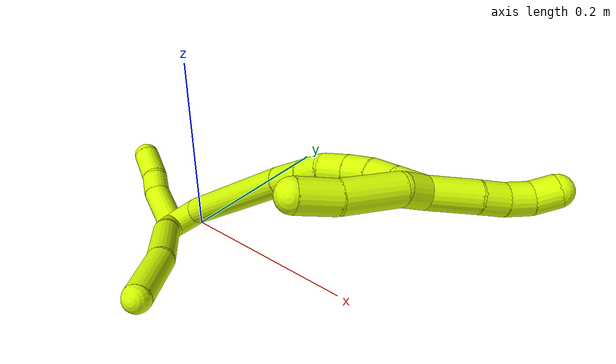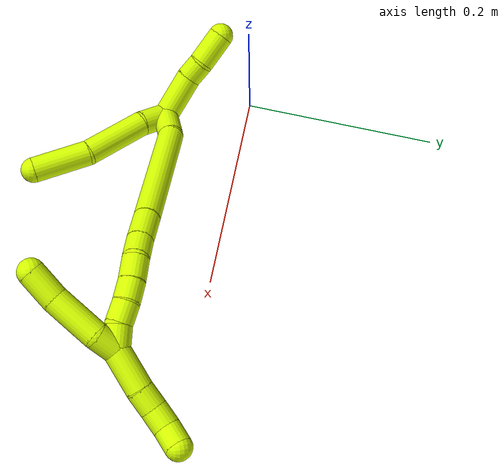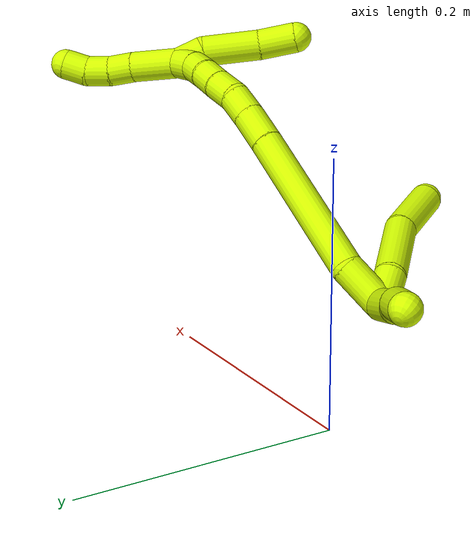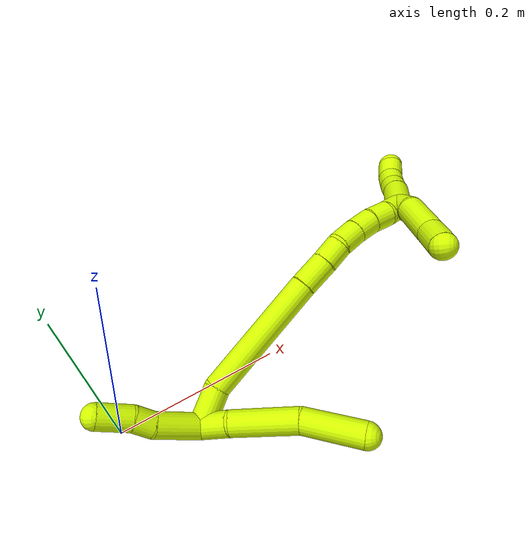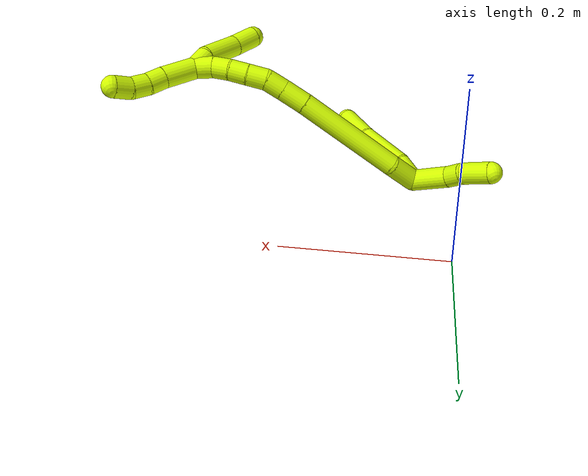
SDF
<sdf version="1.7">
 <world name="default">
  <model name="15">
   <static>0</static>
   <link name="15">
    <collision name="collision-cylinder-e_1_2_8">
     <pose>0.001407 -0.003081 0.014455 0.209965 0.094927 0.01001</pose>
     <geometry><cylinder><radius>0.0125</radius><length>0.029694</length></cylinder></geometry>
     <surface>
      <friction><ode><mu>1.16</mu><mu2>1.16</mu2><slip1>0</slip1><slip2>0</slip2></ode></friction>
      <contact><ode><kp>1e+06</kp><kd>1</kd><max_vel>0</max_vel><min_depth>0.001</min_depth></ode></contact>
     </surface>
    </collision>
    <visual name="visual-cylinder-e_1_2_8">
     <pose>0.001407 -0.003081 0.014455 0.209965 0.094927 0.01001</pose>
     <geometry><cylinder><radius>0.0125</radius><length>0.029694</length></cylinder></geometry>
     <material><ambient>0.835294 1 0 1</ambient></material>
    </visual>
    <collision name="collision-cylinder-e_2_8_9">
     <pose>0.001364 -0.018285 0.058448 0.389499 -0.045395 -0.008956</pose>
     <geometry><cylinder><radius>0.0125</radius><length>0.063923</length></cylinder></geometry>
     <surface>
      <friction><ode><mu>1.16</mu><mu2>1.16</mu2><slip1>0</slip1><slip2>0</slip2></ode></friction>
      <contact><ode><kp>1e+06</kp><kd>1</kd><max_vel>0</max_vel><min_depth>0.001</min_depth></ode></contact>
     </surface>
    </collision>
    <visual name="visual-cylinder-e_2_8_9">
     <pose>0.001364 -0.018285 0.058448 0.389499 -0.045395 -0.008956</pose>
     <geometry><cylinder><radius>0.0125</radius><length>0.063923</length></cylinder></geometry>
     <material><ambient>0.835294 1 0 1</ambient></material>
    </visual>
    <collision name="collision-cylinder-e_3_9_6">
     <pose>-0.006741 -0.035907 0.114823 0.20207 -0.238296 -0.024272</pose>
     <geometry><cylinder><radius>0.0125</radius><length>0.056383</length></cylinder></geometry>
     <surface>
      <friction><ode><mu>1.16</mu><mu2>1.16</mu2><slip1>0</slip1><slip2>0</slip2></ode></friction>
      <contact><ode><kp>1e+06</kp><kd>1</kd><max_vel>0</max_vel><min_depth>0.001</min_depth></ode></contact>
     </surface>
    </collision>
    <visual name="visual-cylinder-e_3_9_6">
     <pose>-0.006741 -0.035907 0.114823 0.20207 -0.238296 -0.024272</pose>
     <geometry><cylinder><radius>0.0125</radius><length>0.056383</length></cylinder></geometry>
     <material><ambient>0.835294 1 0 1</ambient></material>
    </visual>
    <collision name="collision-cylinder-e_1_2_10">
     <pose>0.008747 0.018012 -0.01165 -2.14494 0.387183 -0.691632</pose>
     <geometry><cylinder><radius>0.0125</radius><length>0.046332</length></cylinder></geometry>
     <surface>
      <friction><ode><mu>1.16</mu><mu2>1.16</mu2><slip1>0</slip1><slip2>0</slip2></ode></friction>
      <contact><ode><kp>1e+06</kp><kd>1</kd><max_vel>0</max_vel><min_depth>0.001</min_depth></ode></contact>
     </surface>
    </collision>
    <visual name="visual-cylinder-e_1_2_10">
     <pose>0.008747 0.018012 -0.01165 -2.14494 0.387183 -0.691632</pose>
     <geometry><cylinder><radius>0.0125</radius><length>0.046332</length></cylinder></geometry>
     <material><ambient>0.835294 1 0 1</ambient></material>
    </visual>
    <collision name="collision-cylinder-e_2_10_11">
     <pose>0.023525 0.042243 -0.028375 -2.25516 0.644322 -1.22565</pose>
     <geometry><cylinder><radius>0.0125</radius><length>0.02008</length></cylinder></geometry>
     <surface>
      <friction><ode><mu>1.16</mu><mu2>1.16</mu2><slip1>0</slip1><slip2>0</slip2></ode></friction>
      <contact><ode><kp>1e+06</kp><kd>1</kd><max_vel>0</max_vel><min_depth>0.001</min_depth></ode></contact>
     </surface>
    </collision>
    <visual name="visual-cylinder-e_2_10_11">
     <pose>0.023525 0.042243 -0.028375 -2.25516 0.644322 -1.22565</pose>
     <geometry><cylinder><radius>0.0125</radius><length>0.02008</length></cylinder></geometry>
     <material><ambient>0.835294 1 0 1</ambient></material>
    </visual>
    <collision name="collision-cylinder-e_3_11_5">
     <pose>0.035779 0.060694 -0.043129 -2.24023 0.379666 -0.755979</pose>
     <geometry><cylinder><radius>0.0125</radius><length>0.033588</length></cylinder></geometry>
     <surface>
      <friction><ode><mu>1.16</mu><mu2>1.16</mu2><slip1>0</slip1><slip2>0</slip2></ode></friction>
      <contact><ode><kp>1e+06</kp><kd>1</kd><max_vel>0</max_vel><min_depth>0.001</min_depth></ode></contact>
     </surface>
    </collision>
    <visual name="visual-cylinder-e_3_11_5">
     <pose>0.035779 0.060694 -0.043129 -2.24023 0.379666 -0.755979</pose>
     <geometry><cylinder><radius>0.0125</radius><length>0.033588</length></cylinder></geometry>
     <material><ambient>0.835294 1 0 1</ambient></material>
    </visual>
    <collision name="collision-cylinder-e_1_2_12">
     <pose>0.014461 -0.011256 0.004889 1.16104 0.867117 0.589596</pose>
     <geometry><cylinder><radius>0.0125</radius><length>0.037933</length></cylinder></geometry>
     <surface>
      <friction><ode><mu>1.16</mu><mu2>1.16</mu2><slip1>0</slip1><slip2>0</slip2></ode></friction>
      <contact><ode><kp>1e+06</kp><kd>1</kd><max_vel>0</max_vel><min_depth>0.001</min_depth></ode></contact>
     </surface>
    </collision>
    <visual name="visual-cylinder-e_1_2_12">
     <pose>0.014461 -0.011256 0.004889 1.16104 0.867117 0.589596</pose>
     <geometry><cylinder><radius>0.0125</radius><length>0.037933</length></cylinder></geometry>
     <material><ambient>0.835294 1 0 1</ambient></material>
    </visual>
    <collision name="collision-cylinder-e_2_12_13">
     <pose>0.065654 -0.060953 0.042819 0.860793 0.627072 0.295539</pose>
     <geometry><cylinder><radius>0.0125</radius><length>0.125198</length></cylinder></geometry>
     <surface>
      <friction><ode><mu>1.16</mu><mu2>1.16</mu2><slip1>0</slip1><slip2>0</slip2></ode></friction>
      <contact><ode><kp>1e+06</kp><kd>1</kd><max_vel>0</max_vel><min_depth>0.001</min_depth></ode></contact>
     </surface>
    </collision>
    <visual name="visual-cylinder-e_2_12_13">
     <pose>0.065654 -0.060953 0.042819 0.860793 0.627072 0.295539</pose>
     <geometry><cylinder><radius>0.0125</radius><length>0.125198</length></cylinder></geometry>
     <material><ambient>0.835294 1 0 1</ambient></material>
    </visual>
    <collision name="collision-cylinder-e_3_13_14">
     <pose>0.110438 -0.108964 0.083747 0.881565 0.575863 0.277623</pose>
     <geometry><cylinder><radius>0.0125</radius><length>0.029572</length></cylinder></geometry>
     <surface>
      <friction><ode><mu>1.16</mu><mu2>1.16</mu2><slip1>0</slip1><slip2>0</slip2></ode></friction>
      <contact><ode><kp>1e+06</kp><kd>1</kd><max_vel>0</max_vel><min_depth>0.001</min_depth></ode></contact>
     </surface>
    </collision>
    <visual name="visual-cylinder-e_3_13_14">
     <pose>0.110438 -0.108964 0.083747 0.881565 0.575863 0.277623</pose>
     <geometry><cylinder><radius>0.0125</radius><length>0.029572</length></cylinder></geometry>
     <material><ambient>0.835294 1 0 1</ambient></material>
    </visual>
    <collision name="collision-cylinder-e_4_14_15">
     <pose>0.124643 -0.125772 0.097002 0.932557 0.599103 0.30841</pose>
     <geometry><cylinder><radius>0.0125</radius><length>0.021824</length></cylinder></geometry>
     <surface>
      <friction><ode><mu>1.16</mu><mu2>1.16</mu2><slip1>0</slip1><slip2>0</slip2></ode></friction>
      <contact><ode><kp>1e+06</kp><kd>1</kd><max_vel>0</max_vel><min_depth>0.001</min_depth></ode></contact>
     </surface>
    </collision>
    <visual name="visual-cylinder-e_4_14_15">
     <pose>0.124643 -0.125772 0.097002 0.932557 0.599103 0.30841</pose>
     <geometry><cylinder><radius>0.0125</radius><length>0.021824</length></cylinder></geometry>
     <material><ambient>0.835294 1 0 1</ambient></material>
    </visual>
    <collision name="collision-cylinder-e_5_15_16">
     <pose>0.134567 -0.142537 0.107015 1.11727 0.341861 0.214955</pose>
     <geometry><cylinder><radius>0.0125</radius><length>0.022497</length></cylinder></geometry>
     <surface>
      <friction><ode><mu>1.16</mu><mu2>1.16</mu2><slip1>0</slip1><slip2>0</slip2></ode></friction>
      <contact><ode><kp>1e+06</kp><kd>1</kd><max_vel>0</max_vel><min_depth>0.001</min_depth></ode></contact>
     </surface>
    </collision>
    <visual name="visual-cylinder-e_5_15_16">
     <pose>0.134567 -0.142537 0.107015 1.11727 0.341861 0.214955</pose>
     <geometry><cylinder><radius>0.0125</radius><length>0.022497</length></cylinder></geometry>
     <material><ambient>0.835294 1 0 1</ambient></material>
    </visual>
    <collision name="collision-cylinder-e_6_16_17">
     <pose>0.141154 -0.160699 0.116564 1.05413 0.276207 0.161425</pose>
     <geometry><cylinder><radius>0.0125</radius><length>0.020647</length></cylinder></geometry>
     <surface>
      <friction><ode><mu>1.16</mu><mu2>1.16</mu2><slip1>0</slip1><slip2>0</slip2></ode></friction>
      <contact><ode><kp>1e+06</kp><kd>1</kd><max_vel>0</max_vel><min_depth>0.001</min_depth></ode></contact>
     </surface>
    </collision>
    <visual name="visual-cylinder-e_6_16_17">
     <pose>0.141154 -0.160699 0.116564 1.05413 0.276207 0.161425</pose>
     <geometry><cylinder><radius>0.0125</radius><length>0.020647</length></cylinder></geometry>
     <material><ambient>0.835294 1 0 1</ambient></material>
    </visual>
    <collision name="collision-cylinder-e_7_17_18">
     <pose>0.145233 -0.178013 0.126619 1.0354 0.124584 0.071014</pose>
     <geometry><cylinder><radius>0.0125</radius><length>0.020339</length></cylinder></geometry>
     <surface>
      <friction><ode><mu>1.16</mu><mu2>1.16</mu2><slip1>0</slip1><slip2>0</slip2></ode></friction>
      <contact><ode><kp>1e+06</kp><kd>1</kd><max_vel>0</max_vel><min_depth>0.001</min_depth></ode></contact>
     </surface>
    </collision>
    <visual name="visual-cylinder-e_7_17_18">
     <pose>0.145233 -0.178013 0.126619 1.0354 0.124584 0.071014</pose>
     <geometry><cylinder><radius>0.0125</radius><length>0.020339</length></cylinder></geometry>
     <material><ambient>0.835294 1 0 1</ambient></material>
    </visual>
    <collision name="collision-cylinder-e_8_18_1">
     <pose>0.147677 -0.197238 0.134641 1.30474 0.107571 0.082212</pose>
     <geometry><cylinder><radius>0.0125</radius><length>0.021989</length></cylinder></geometry>
     <surface>
      <friction><ode><mu>1.16</mu><mu2>1.16</mu2><slip1>0</slip1><slip2>0</slip2></ode></friction>
      <contact><ode><kp>1e+06</kp><kd>1</kd><max_vel>0</max_vel><min_depth>0.001</min_depth></ode></contact>
     </surface>
    </collision>
    <visual name="visual-cylinder-e_8_18_1">
     <pose>0.147677 -0.197238 0.134641 1.30474 0.107571 0.082212</pose>
     <geometry><cylinder><radius>0.0125</radius><length>0.021989</length></cylinder></geometry>
     <material><ambient>0.835294 1 0 1</ambient></material>
    </visual>
    <collision name="collision-cylinder-e_1_1_19">
     <pose>0.147918 -0.200152 0.145505 -0.762537 -0.084784 0.034006</pose>
     <geometry><cylinder><radius>0.0125</radius><length>0.022178</length></cylinder></geometry>
     <surface>
      <friction><ode><mu>1.16</mu><mu2>1.16</mu2><slip1>0</slip1><slip2>0</slip2></ode></friction>
      <contact><ode><kp>1e+06</kp><kd>1</kd><max_vel>0</max_vel><min_depth>0.001</min_depth></ode></contact>
     </surface>
    </collision>
    <visual name="visual-cylinder-e_1_1_19">
     <pose>0.147918 -0.200152 0.145505 -0.762537 -0.084784 0.034006</pose>
     <geometry><cylinder><radius>0.0125</radius><length>0.022178</length></cylinder></geometry>
     <material><ambient>0.835294 1 0 1</ambient></material>
    </visual>
    <collision name="collision-cylinder-e_2_19_20">
     <pose>0.138275 -0.175159 0.166688 -0.920967 -0.379784 0.190115</pose>
     <geometry><cylinder><radius>0.0125</radius><length>0.046957</length></cylinder></geometry>
     <surface>
      <friction><ode><mu>1.16</mu><mu2>1.16</mu2><slip1>0</slip1><slip2>0</slip2></ode></friction>
      <contact><ode><kp>1e+06</kp><kd>1</kd><max_vel>0</max_vel><min_depth>0.001</min_depth></ode></contact>
     </surface>
    </collision>
    <visual name="visual-cylinder-e_2_19_20">
     <pose>0.138275 -0.175159 0.166688 -0.920967 -0.379784 0.190115</pose>
     <geometry><cylinder><radius>0.0125</radius><length>0.046957</length></cylinder></geometry>
     <material><ambient>0.835294 1 0 1</ambient></material>
    </visual>
    <collision name="collision-cylinder-e_3_20_4">
     <pose>0.125859 -0.145023 0.187703 -1.02139 -0.242923 0.136563</pose>
     <geometry><cylinder><radius>0.0125</radius><length>0.030865</length></cylinder></geometry>
     <surface>
      <friction><ode><mu>1.16</mu><mu2>1.16</mu2><slip1>0</slip1><slip2>0</slip2></ode></friction>
      <contact><ode><kp>1e+06</kp><kd>1</kd><max_vel>0</max_vel><min_depth>0.001</min_depth></ode></contact>
     </surface>
    </collision>
    <visual name="visual-cylinder-e_3_20_4">
     <pose>0.125859 -0.145023 0.187703 -1.02139 -0.242923 0.136563</pose>
     <geometry><cylinder><radius>0.0125</radius><length>0.030865</length></cylinder></geometry>
     <material><ambient>0.835294 1 0 1</ambient></material>
    </visual>
    <collision name="collision-cylinder-e_1_1_21">
     <pose>0.154055 -0.225773 0.131021 1.91727 0.265375 0.375701</pose>
     <geometry><cylinder><radius>0.0125</radius><length>0.039635</length></cylinder></geometry>
     <surface>
      <friction><ode><mu>1.16</mu><mu2>1.16</mu2><slip1>0</slip1><slip2>0</slip2></ode></friction>
      <contact><ode><kp>1e+06</kp><kd>1</kd><max_vel>0</max_vel><min_depth>0.001</min_depth></ode></contact>
     </surface>
    </collision>
    <visual name="visual-cylinder-e_1_1_21">
     <pose>0.154055 -0.225773 0.131021 1.91727 0.265375 0.375701</pose>
     <geometry><cylinder><radius>0.0125</radius><length>0.039635</length></cylinder></geometry>
     <material><ambient>0.835294 1 0 1</ambient></material>
    </visual>
    <collision name="collision-cylinder-e_2_21_22">
     <pose>0.161493 -0.252624 0.120217 2.02331 0.223518 0.35492</pose>
     <geometry><cylinder><radius>0.0125</radius><length>0.020215</length></cylinder></geometry>
     <surface>
      <friction><ode><mu>1.16</mu><mu2>1.16</mu2><slip1>0</slip1><slip2>0</slip2></ode></friction>
      <contact><ode><kp>1e+06</kp><kd>1</kd><max_vel>0</max_vel><min_depth>0.001</min_depth></ode></contact>
     </surface>
    </collision>
    <visual name="visual-cylinder-e_2_21_22">
     <pose>0.161493 -0.252624 0.120217 2.02331 0.223518 0.35492</pose>
     <geometry><cylinder><radius>0.0125</radius><length>0.020215</length></cylinder></geometry>
     <material><ambient>0.835294 1 0 1</ambient></material>
    </visual>
    <collision name="collision-cylinder-e_3_22_23">
     <pose>0.167412 -0.270133 0.112328 1.96343 0.374629 0.552766</pose>
     <geometry><cylinder><radius>0.0125</radius><length>0.020108</length></cylinder></geometry>
     <surface>
      <friction><ode><mu>1.16</mu><mu2>1.16</mu2><slip1>0</slip1><slip2>0</slip2></ode></friction>
      <contact><ode><kp>1e+06</kp><kd>1</kd><max_vel>0</max_vel><min_depth>0.001</min_depth></ode></contact>
     </surface>
    </collision>
    <visual name="visual-cylinder-e_3_22_23">
     <pose>0.167412 -0.270133 0.112328 1.96343 0.374629 0.552766</pose>
     <geometry><cylinder><radius>0.0125</radius><length>0.020108</length></cylinder></geometry>
     <material><ambient>0.835294 1 0 1</ambient></material>
    </visual>
    <collision name="collision-cylinder-e_4_23_3">
     <pose>0.177179 -0.286535 0.106964 1.7968 0.652962 0.804232</pose>
     <geometry><cylinder><radius>0.0125</radius><length>0.020041</length></cylinder></geometry>
     <surface>
      <friction><ode><mu>1.16</mu><mu2>1.16</mu2><slip1>0</slip1><slip2>0</slip2></ode></friction>
      <contact><ode><kp>1e+06</kp><kd>1</kd><max_vel>0</max_vel><min_depth>0.001</min_depth></ode></contact>
     </surface>
    </collision>
    <visual name="visual-cylinder-e_4_23_3">
     <pose>0.177179 -0.286535 0.106964 1.7968 0.652962 0.804232</pose>
     <geometry><cylinder><radius>0.0125</radius><length>0.020041</length></cylinder></geometry>
     <material><ambient>0.835294 1 0 1</ambient></material>
    </visual>
    <collision name="collision-sphere-3">
     <pose>0.183267 -0.294292 0.105181 0 -0 0</pose>
     <geometry><sphere><radius>0.0125</radius></sphere></geometry>
     <surface>
      <friction><ode><mu>1.16</mu><mu2>1.16</mu2><slip1>0</slip1><slip2>0</slip2></ode></friction>
      <contact><ode><kp>1e+06</kp><kd>1</kd><max_vel>0</max_vel><min_depth>0.001</min_depth></ode></contact>
     </surface>
    </collision>
    <visual name="visual-sphere-3">
     <pose>0.183267 -0.294292 0.105181 0 -0 0</pose>
     <geometry><sphere><radius>0.0125</radius></sphere></geometry>
     <material><ambient>0.835294 1 0 1</ambient></material>
    </visual>
    <collision name="collision-sphere-23">
     <pose>0.171091 -0.278778 0.108748 0 -0 0</pose>
     <geometry><sphere><radius>0.0125</radius></sphere></geometry>
     <surface>
      <friction><ode><mu>1.16</mu><mu2>1.16</mu2><slip1>0</slip1><slip2>0</slip2></ode></friction>
      <contact><ode><kp>1e+06</kp><kd>1</kd><max_vel>0</max_vel><min_depth>0.001</min_depth></ode></contact>
     </surface>
    </collision>
    <visual name="visual-sphere-23">
     <pose>0.171091 -0.278778 0.108748 0 -0 0</pose>
     <geometry><sphere><radius>0.0125</radius></sphere></geometry>
     <material><ambient>0.835294 1 0 1</ambient></material>
    </visual>
    <collision name="collision-sphere-22">
     <pose>0.163733 -0.261489 0.115908 0 -0 0</pose>
     <geometry><sphere><radius>0.0125</radius></sphere></geometry>
     <surface>
      <friction><ode><mu>1.16</mu><mu2>1.16</mu2><slip1>0</slip1><slip2>0</slip2></ode></friction>
      <contact><ode><kp>1e+06</kp><kd>1</kd><max_vel>0</max_vel><min_depth>0.001</min_depth></ode></contact>
     </surface>
    </collision>
    <visual name="visual-sphere-22">
     <pose>0.163733 -0.261489 0.115908 0 -0 0</pose>
     <geometry><sphere><radius>0.0125</radius></sphere></geometry>
     <material><ambient>0.835294 1 0 1</ambient></material>
    </visual>
    <collision name="collision-sphere-21">
     <pose>0.159252 -0.24376 0.124527 0 -0 0</pose>
     <geometry><sphere><radius>0.0125</radius></sphere></geometry>
     <surface>
      <friction><ode><mu>1.16</mu><mu2>1.16</mu2><slip1>0</slip1><slip2>0</slip2></ode></friction>
      <contact><ode><kp>1e+06</kp><kd>1</kd><max_vel>0</max_vel><min_depth>0.001</min_depth></ode></contact>
     </surface>
    </collision>
    <visual name="visual-sphere-21">
     <pose>0.159252 -0.24376 0.124527 0 -0 0</pose>
     <geometry><sphere><radius>0.0125</radius></sphere></geometry>
     <material><ambient>0.835294 1 0 1</ambient></material>
    </visual>
    <collision name="collision-sphere-4">
     <pose>0.122147 -0.132248 0.195525 0 -0 0</pose>
     <geometry><sphere><radius>0.0125</radius></sphere></geometry>
     <surface>
      <friction><ode><mu>1.16</mu><mu2>1.16</mu2><slip1>0</slip1><slip2>0</slip2></ode></friction>
      <contact><ode><kp>1e+06</kp><kd>1</kd><max_vel>0</max_vel><min_depth>0.001</min_depth></ode></contact>
     </surface>
    </collision>
    <visual name="visual-sphere-4">
     <pose>0.122147 -0.132248 0.195525 0 -0 0</pose>
     <geometry><sphere><radius>0.0125</radius></sphere></geometry>
     <material><ambient>0.835294 1 0 1</ambient></material>
    </visual>
    <collision name="collision-sphere-20">
     <pose>0.129571 -0.157798 0.179881 0 -0 0</pose>
     <geometry><sphere><radius>0.0125</radius></sphere></geometry>
     <surface>
      <friction><ode><mu>1.16</mu><mu2>1.16</mu2><slip1>0</slip1><slip2>0</slip2></ode></friction>
      <contact><ode><kp>1e+06</kp><kd>1</kd><max_vel>0</max_vel><min_depth>0.001</min_depth></ode></contact>
     </surface>
    </collision>
    <visual name="visual-sphere-20">
     <pose>0.129571 -0.157798 0.179881 0 -0 0</pose>
     <geometry><sphere><radius>0.0125</radius></sphere></geometry>
     <material><ambient>0.835294 1 0 1</ambient></material>
    </visual>
    <collision name="collision-sphere-11">
     <pose>0.029555 0.048462 -0.03345 0 -0 0</pose>
     <geometry><sphere><radius>0.0125</radius></sphere></geometry>
     <surface>
      <friction><ode><mu>1.16</mu><mu2>1.16</mu2><slip1>0</slip1><slip2>0</slip2></ode></friction>
      <contact><ode><kp>1e+06</kp><kd>1</kd><max_vel>0</max_vel><min_depth>0.001</min_depth></ode></contact>
     </surface>
    </collision>
    <visual name="visual-sphere-11">
     <pose>0.029555 0.048462 -0.03345 0 -0 0</pose>
     <geometry><sphere><radius>0.0125</radius></sphere></geometry>
     <material><ambient>0.835294 1 0 1</ambient></material>
    </visual>
    <collision name="collision-sphere-10">
     <pose>0.017494 0.036023 -0.023301 0 -0 0</pose>
     <geometry><sphere><radius>0.0125</radius></sphere></geometry>
     <surface>
      <friction><ode><mu>1.16</mu><mu2>1.16</mu2><slip1>0</slip1><slip2>0</slip2></ode></friction>
      <contact><ode><kp>1e+06</kp><kd>1</kd><max_vel>0</max_vel><min_depth>0.001</min_depth></ode></contact>
     </surface>
    </collision>
    <visual name="visual-sphere-10">
     <pose>0.017494 0.036023 -0.023301 0 -0 0</pose>
     <geometry><sphere><radius>0.0125</radius></sphere></geometry>
     <material><ambient>0.835294 1 0 1</ambient></material>
    </visual>
    <collision name="collision-sphere-6">
     <pose>-0.013395 -0.041405 0.14166 0 -0 0</pose>
     <geometry><sphere><radius>0.0125</radius></sphere></geometry>
     <surface>
      <friction><ode><mu>1.16</mu><mu2>1.16</mu2><slip1>0</slip1><slip2>0</slip2></ode></friction>
      <contact><ode><kp>1e+06</kp><kd>1</kd><max_vel>0</max_vel><min_depth>0.001</min_depth></ode></contact>
     </surface>
    </collision>
    <visual name="visual-sphere-6">
     <pose>-0.013395 -0.041405 0.14166 0 -0 0</pose>
     <geometry><sphere><radius>0.0125</radius></sphere></geometry>
     <material><ambient>0.835294 1 0 1</ambient></material>
    </visual>
    <collision name="collision-sphere-9">
     <pose>-8.6e-05 -0.030409 0.087985 0 -0 0</pose>
     <geometry><sphere><radius>0.0125</radius></sphere></geometry>
     <surface>
      <friction><ode><mu>1.16</mu><mu2>1.16</mu2><slip1>0</slip1><slip2>0</slip2></ode></friction>
      <contact><ode><kp>1e+06</kp><kd>1</kd><max_vel>0</max_vel><min_depth>0.001</min_depth></ode></contact>
     </surface>
    </collision>
    <visual name="visual-sphere-9">
     <pose>-8.6e-05 -0.030409 0.087985 0 -0 0</pose>
     <geometry><sphere><radius>0.0125</radius></sphere></geometry>
     <material><ambient>0.835294 1 0 1</ambient></material>
    </visual>
    <collision name="collision-sphere-2">
     <geometry><sphere><radius>0.0125</radius></sphere></geometry>
     <surface>
      <friction><ode><mu>1.16</mu><mu2>1.16</mu2><slip1>0</slip1><slip2>0</slip2></ode></friction>
      <contact><ode><kp>1e+06</kp><kd>1</kd><max_vel>0</max_vel><min_depth>0.001</min_depth></ode></contact>
     </surface>
    </collision>
    <visual name="visual-sphere-2">
     <geometry><sphere><radius>0.0125</radius></sphere></geometry>
     <material><ambient>0.835294 1 0 1</ambient></material>
    </visual>
    <collision name="collision-sphere-19">
     <pose>0.146979 -0.19252 0.153494 0 -0 0</pose>
     <geometry><sphere><radius>0.0125</radius></sphere></geometry>
     <surface>
      <friction><ode><mu>1.16</mu><mu2>1.16</mu2><slip1>0</slip1><slip2>0</slip2></ode></friction>
      <contact><ode><kp>1e+06</kp><kd>1</kd><max_vel>0</max_vel><min_depth>0.001</min_depth></ode></contact>
     </surface>
    </collision>
    <visual name="visual-sphere-19">
     <pose>0.146979 -0.19252 0.153494 0 -0 0</pose>
     <geometry><sphere><radius>0.0125</radius></sphere></geometry>
     <material><ambient>0.835294 1 0 1</ambient></material>
    </visual>
    <collision name="collision-sphere-8">
     <pose>0.002815 -0.006161 0.028911 0 -0 0</pose>
     <geometry><sphere><radius>0.0125</radius></sphere></geometry>
     <surface>
      <friction><ode><mu>1.16</mu><mu2>1.16</mu2><slip1>0</slip1><slip2>0</slip2></ode></friction>
      <contact><ode><kp>1e+06</kp><kd>1</kd><max_vel>0</max_vel><min_depth>0.001</min_depth></ode></contact>
     </surface>
    </collision>
    <visual name="visual-sphere-8">
     <pose>0.002815 -0.006161 0.028911 0 -0 0</pose>
     <geometry><sphere><radius>0.0125</radius></sphere></geometry>
     <material><ambient>0.835294 1 0 1</ambient></material>
    </visual>
    <collision name="collision-sphere-5">
     <pose>0.042003 0.072925 -0.052809 0 -0 0</pose>
     <geometry><sphere><radius>0.0125</radius></sphere></geometry>
     <surface>
      <friction><ode><mu>1.16</mu><mu2>1.16</mu2><slip1>0</slip1><slip2>0</slip2></ode></friction>
      <contact><ode><kp>1e+06</kp><kd>1</kd><max_vel>0</max_vel><min_depth>0.001</min_depth></ode></contact>
     </surface>
    </collision>
    <visual name="visual-sphere-5">
     <pose>0.042003 0.072925 -0.052809 0 -0 0</pose>
     <geometry><sphere><radius>0.0125</radius></sphere></geometry>
     <material><ambient>0.835294 1 0 1</ambient></material>
    </visual>
    <collision name="collision-sphere-12">
     <pose>0.028923 -0.022512 0.009778 0 -0 0</pose>
     <geometry><sphere><radius>0.0125</radius></sphere></geometry>
     <surface>
      <friction><ode><mu>1.16</mu><mu2>1.16</mu2><slip1>0</slip1><slip2>0</slip2></ode></friction>
      <contact><ode><kp>1e+06</kp><kd>1</kd><max_vel>0</max_vel><min_depth>0.001</min_depth></ode></contact>
     </surface>
    </collision>
    <visual name="visual-sphere-12">
     <pose>0.028923 -0.022512 0.009778 0 -0 0</pose>
     <geometry><sphere><radius>0.0125</radius></sphere></geometry>
     <material><ambient>0.835294 1 0 1</ambient></material>
    </visual>
    <collision name="collision-sphere-13">
     <pose>0.102386 -0.099394 0.07586 0 -0 0</pose>
     <geometry><sphere><radius>0.0125</radius></sphere></geometry>
     <surface>
      <friction><ode><mu>1.16</mu><mu2>1.16</mu2><slip1>0</slip1><slip2>0</slip2></ode></friction>
      <contact><ode><kp>1e+06</kp><kd>1</kd><max_vel>0</max_vel><min_depth>0.001</min_depth></ode></contact>
     </surface>
    </collision>
    <visual name="visual-sphere-13">
     <pose>0.102386 -0.099394 0.07586 0 -0 0</pose>
     <geometry><sphere><radius>0.0125</radius></sphere></geometry>
     <material><ambient>0.835294 1 0 1</ambient></material>
    </visual>
    <collision name="collision-sphere-14">
     <pose>0.118489 -0.118535 0.091633 0 -0 0</pose>
     <geometry><sphere><radius>0.0125</radius></sphere></geometry>
     <surface>
      <friction><ode><mu>1.16</mu><mu2>1.16</mu2><slip1>0</slip1><slip2>0</slip2></ode></friction>
      <contact><ode><kp>1e+06</kp><kd>1</kd><max_vel>0</max_vel><min_depth>0.001</min_depth></ode></contact>
     </surface>
    </collision>
    <visual name="visual-sphere-14">
     <pose>0.118489 -0.118535 0.091633 0 -0 0</pose>
     <geometry><sphere><radius>0.0125</radius></sphere></geometry>
     <material><ambient>0.835294 1 0 1</ambient></material>
    </visual>
    <collision name="collision-sphere-15">
     <pose>0.130796 -0.13301 0.102371 0 -0 0</pose>
     <geometry><sphere><radius>0.0125</radius></sphere></geometry>
     <surface>
      <friction><ode><mu>1.16</mu><mu2>1.16</mu2><slip1>0</slip1><slip2>0</slip2></ode></friction>
      <contact><ode><kp>1e+06</kp><kd>1</kd><max_vel>0</max_vel><min_depth>0.001</min_depth></ode></contact>
     </surface>
    </collision>
    <visual name="visual-sphere-15">
     <pose>0.130796 -0.13301 0.102371 0 -0 0</pose>
     <geometry><sphere><radius>0.0125</radius></sphere></geometry>
     <material><ambient>0.835294 1 0 1</ambient></material>
    </visual>
    <collision name="collision-sphere-16">
     <pose>0.138338 -0.152063 0.111658 0 -0 0</pose>
     <geometry><sphere><radius>0.0125</radius></sphere></geometry>
     <surface>
      <friction><ode><mu>1.16</mu><mu2>1.16</mu2><slip1>0</slip1><slip2>0</slip2></ode></friction>
      <contact><ode><kp>1e+06</kp><kd>1</kd><max_vel>0</max_vel><min_depth>0.001</min_depth></ode></contact>
     </surface>
    </collision>
    <visual name="visual-sphere-16">
     <pose>0.138338 -0.152063 0.111658 0 -0 0</pose>
     <geometry><sphere><radius>0.0125</radius></sphere></geometry>
     <material><ambient>0.835294 1 0 1</ambient></material>
    </visual>
    <collision name="collision-sphere-17">
     <pose>0.143969 -0.169334 0.121471 0 -0 0</pose>
     <geometry><sphere><radius>0.0125</radius></sphere></geometry>
     <surface>
      <friction><ode><mu>1.16</mu><mu2>1.16</mu2><slip1>0</slip1><slip2>0</slip2></ode></friction>
      <contact><ode><kp>1e+06</kp><kd>1</kd><max_vel>0</max_vel><min_depth>0.001</min_depth></ode></contact>
     </surface>
    </collision>
    <visual name="visual-sphere-17">
     <pose>0.143969 -0.169334 0.121471 0 -0 0</pose>
     <geometry><sphere><radius>0.0125</radius></sphere></geometry>
     <material><ambient>0.835294 1 0 1</ambient></material>
    </visual>
    <collision name="collision-sphere-18">
     <pose>0.146496 -0.186692 0.131767 0 -0 0</pose>
     <geometry><sphere><radius>0.0125</radius></sphere></geometry>
     <surface>
      <friction><ode><mu>1.16</mu><mu2>1.16</mu2><slip1>0</slip1><slip2>0</slip2></ode></friction>
      <contact><ode><kp>1e+06</kp><kd>1</kd><max_vel>0</max_vel><min_depth>0.001</min_depth></ode></contact>
     </surface>
    </collision>
    <visual name="visual-sphere-18">
     <pose>0.146496 -0.186692 0.131767 0 -0 0</pose>
     <geometry><sphere><radius>0.0125</radius></sphere></geometry>
     <material><ambient>0.835294 1 0 1</ambient></material>
    </visual>
    <collision name="collision-sphere-1">
     <pose>0.148857 -0.207785 0.137515 0 -0 0</pose>
     <geometry><sphere><radius>0.0125</radius></sphere></geometry>
     <surface>
      <friction><ode><mu>1.16</mu><mu2>1.16</mu2><slip1>0</slip1><slip2>0</slip2></ode></friction>
      <contact><ode><kp>1e+06</kp><kd>1</kd><max_vel>0</max_vel><min_depth>0.001</min_depth></ode></contact>
     </surface>
    </collision>
    <visual name="visual-sphere-1">
     <pose>0.148857 -0.207785 0.137515 0 -0 0</pose>
     <geometry><sphere><radius>0.0125</radius></sphere></geometry>
     <material><ambient>0.835294 1 0 1</ambient></material>
    </visual>
    <inertial>
     <pose>0.078229 -0.093922 0.076593 0 -0 0</pose>
     <mass>0.75</mass>
     <inertia>
      <ixx>0.000278</ixx>
      <ixy>0</ixy>
      <ixz>0</ixz>
      <iyy>0.000211</iyy>
      <iyz>0</iyz>
      <izz>2.7e-05</izz>
     </inertia>
    </inertial>
   </link>
   <pose>0.04919 -0.077992 0.062885 0.555141 -1.0511 1.40646</pose>
  </model>
 </world>
</sdf>
